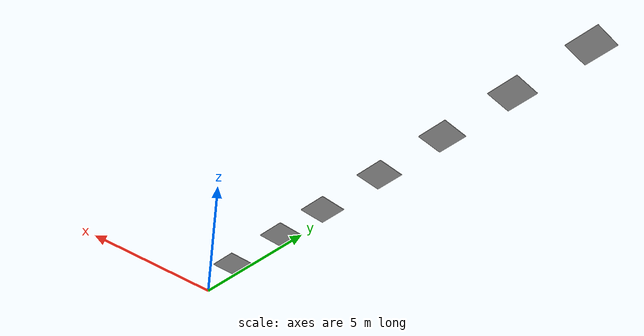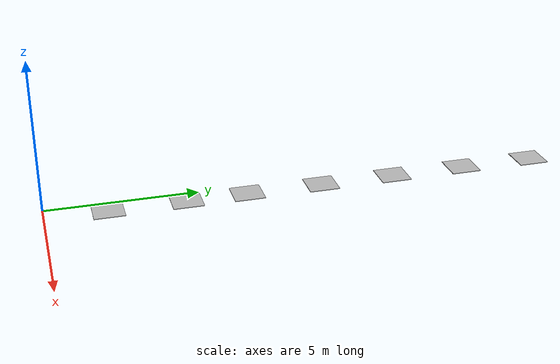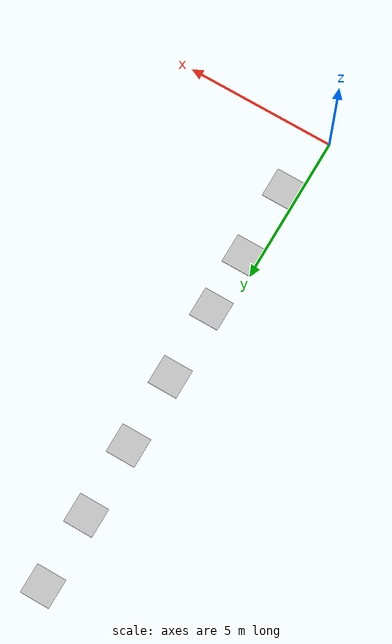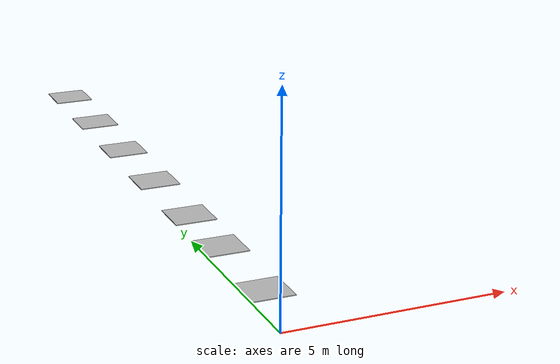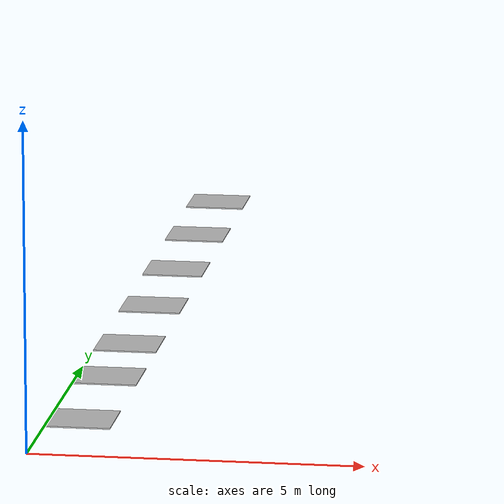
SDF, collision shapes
<?xml version='1.0'?>
<sdf version="1.4">
  <model name="Hilera">
      <include>
      <uri>model://Verde Limon</uri>
      <name>Verde 1</name>
      <pose>0.5 2.0 0 0 0 0</pose>
    </include>

    <include>
      <uri>model://Verde Limon</uri>
      <name>Verde Limon 1 </name>
      <pose>0.5 4.5 0 0 0 0</pose>
    </include>
    <include>
      <uri>model://Malogrado</uri>
      <name>Malogrado 1</name>
      <pose>0.5 6.5 0 0 0 0</pose>
    </include>
    <include>
      <uri>model://Verde Limon</uri>
      <name>Melon 2</name>
      <pose>0.5 9.0 0 0 0 0</pose>
    </include>

    <include>
      <uri>model://Verde Limon</uri>
      <name>Verde Limon 2</name>
      <pose>0.5 11.5 0 0 0 0</pose>
    </include>
    <include>
      <uri>model://Malogrado</uri>
      <name>Malogrado 2</name>
      <pose>0.5 14.0 0 0 0 0</pose>
    </include>
    <include>
      <uri>model://Verde Limon</uri>
      <name>Melon 3</name>
      <pose>0.5 16.5 0 0 0 0</pose>
    </include>
  </model>
</sdf>

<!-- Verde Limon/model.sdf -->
<sdf version="1.4">
  <model name="Verde Limon">
    <pose>0 0 0.0 0 0 0</pose>
    <static>true</static>
    <link name="link">
      <inertial>
        <mass>1.0</mass>
        <inertia> <!-- inertias are tricky to compute -->
          <!-- http://gazebosim.org/tutorials?tut=inertia&cat=build_robot -->
          <ixx>0.083</ixx>       <!-- for a box: ixx = 0.083 * mass * (y*y + z*z) -->
          <ixy>0.0</ixy>         <!-- for a box: ixy = 0 -->
          <ixz>0.0</ixz>         <!-- for a box: ixz = 0 -->
          <iyy>0.083</iyy>       <!-- for a box: iyy = 0.083 * mass * (x*x + z*z) -->
          <iyz>0.0</iyz>         <!-- for a box: iyz = 0 -->
          <izz>0.083</izz>       <!-- for a box: izz = 0.083 * mass * (x*x + y*y) -->
        </inertia>
      </inertial>
      <collision name="collision">
        <geometry>
          <box>
            <size>1 1 0.02</size>
          </box>
        </geometry>
      </collision>
      <visual name="visual">
        <geometry>
          <mesh>
            <uri>model://Verde Limon/meshes/anaranjado_fuerte.dae</uri>
            <scale>0.44 0.44 0.44</scale>
          </mesh>
        </geometry>
      </visual>
    </link>
  </model>
</sdf>

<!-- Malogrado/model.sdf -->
<sdf version="1.4">
  <model name="Malogrado">
    <pose>0 0 0.0 0 0 0</pose>
    <static>true</static>
    <link name="link">
      <inertial>
        <mass>1.0</mass>
        <inertia> <!-- inertias are tricky to compute -->
          <!-- http://gazebosim.org/tutorials?tut=inertia&cat=build_robot -->
          <ixx>0.083</ixx>       <!-- for a box: ixx = 0.083 * mass * (y*y + z*z) -->
          <ixy>0.0</ixy>         <!-- for a box: ixy = 0 -->
          <ixz>0.0</ixz>         <!-- for a box: ixz = 0 -->
          <iyy>0.083</iyy>       <!-- for a box: iyy = 0.083 * mass * (x*x + z*z) -->
          <iyz>0.0</iyz>         <!-- for a box: iyz = 0 -->
          <izz>0.083</izz>       <!-- for a box: izz = 0.083 * mass * (x*x + y*y) -->
        </inertia>
      </inertial>
      <collision name="collision">
        <geometry>
          <box>
            <size>1 1 0.02</size>
          </box>
        </geometry>
      </collision>
      <visual name="visual">
        <geometry>
          <mesh>
            <uri>model://Malogrado/meshes/negro.dae</uri>
            <scale>0.44 0.44 0.44</scale>
          </mesh>
        </geometry>
      </visual>
    </link>
  </model>
</sdf>
